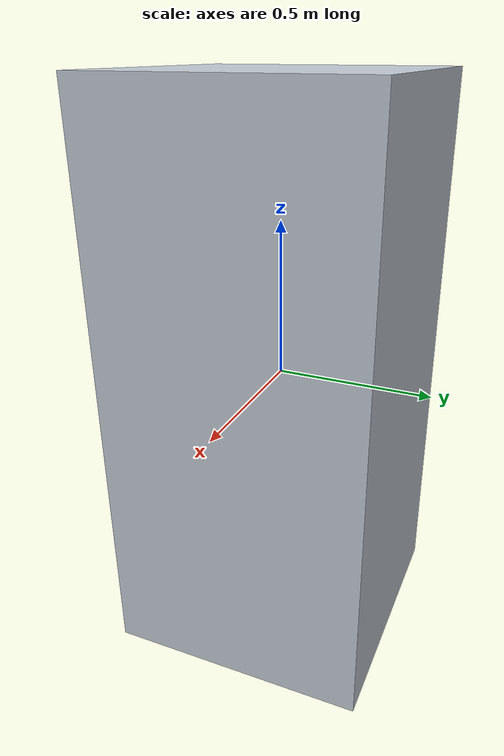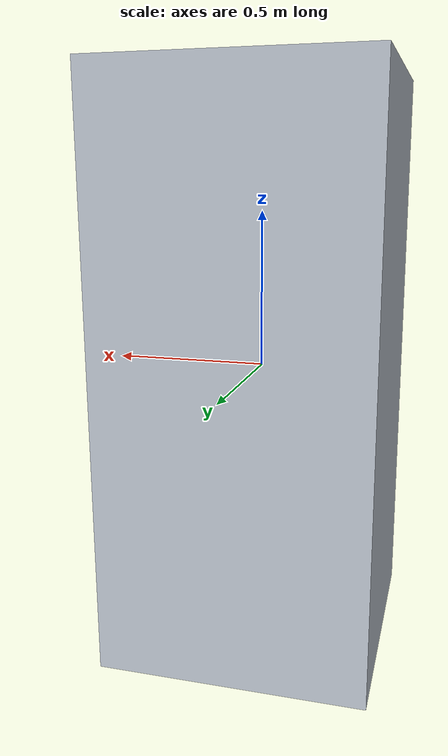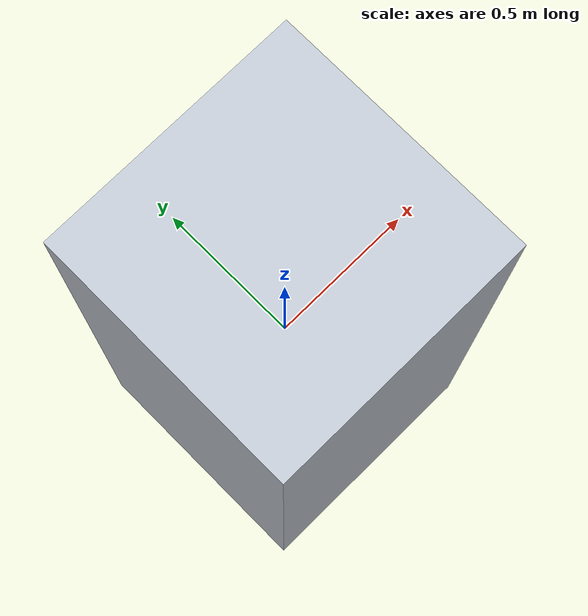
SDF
<?xml version="1.0"?>
<sdf version="1.6">
  <model name="refrigerator">
    <static>true</static>
    <link name="link">
      <collision name="col">
        <geometry>
          <box>
            <size>0.85 0.85 1.85</size>
          </box>
        </geometry>
      </collision>
      <visual name="vis">
        <geometry>
          <box>
            <size>0.85 0.85 1.85</size>
          </box>
        </geometry>
        <material>
          <ambient>0.75 0.78 0.82 1</ambient>
          <diffuse>0.75 0.78 0.82 1</diffuse>
        </material>
      </visual>
    </link>
  </model>
</sdf>
